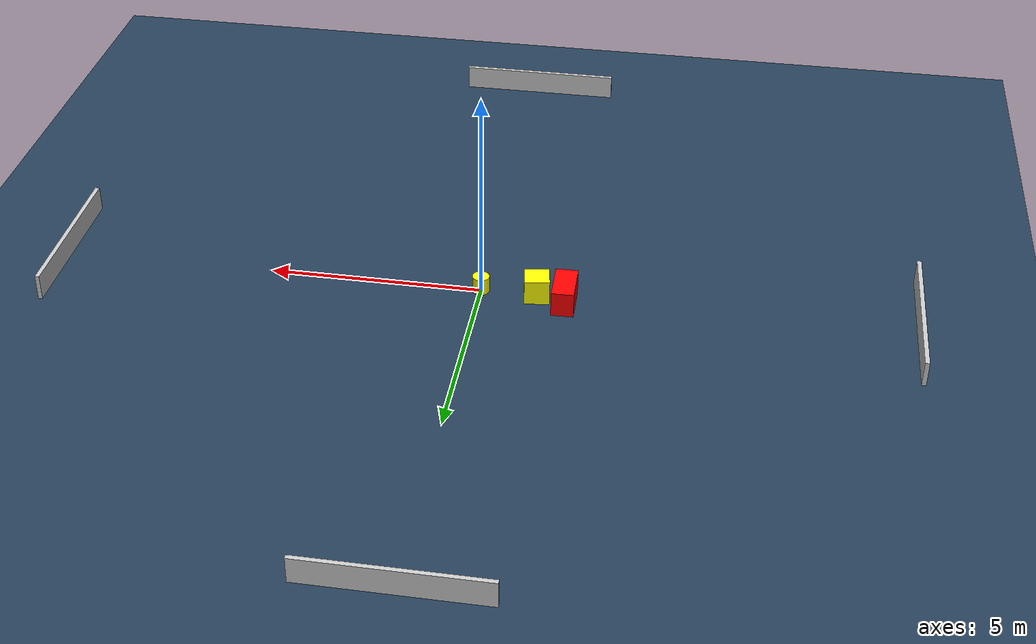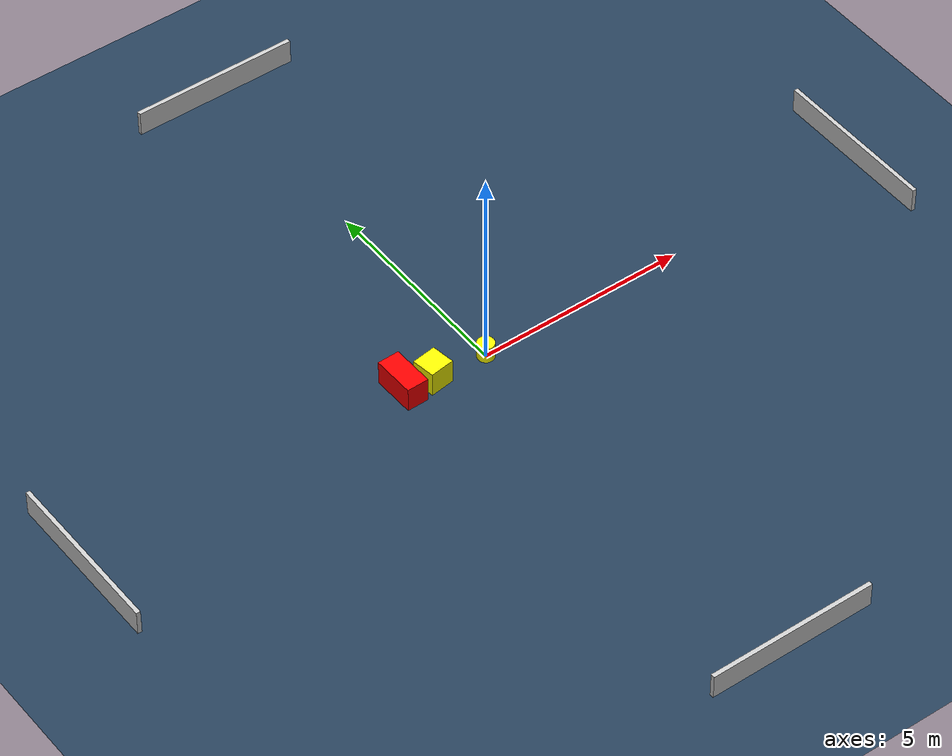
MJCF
<?xml version="1.0" ?>
<mujoco model="generated_environment">
  <option timestep="0.01" integrator="RK4" cone="elliptic"/>
  <default>
    <geom density="1"/>
  </default>
  <asset>
    <texture builtin="gradient" height="3072" name="skybox" rgb1="0.3 0.5 0.7" rgb2="0 0 0" type="skybox" width="512"/>
    <texture builtin="checker" height="300" name="groundplane" rgb1="0.2 0.3 0.4" rgb2="0.1 0.2 0.3" type="2d" width="300"/>
    <material name="groundplane" reflectance="0.2" texrepeat="5 5" texture="groundplane"/>
  </asset>
  <worldbody>
    <light dir="0 0 -1" directional="true" pos="0 0 1.5"/>
    <geom condim="3" friction="0.5 0.005 0.001" material="groundplane" name="floor" pos="0 0 0" size="0 0 0.05" type="plane"/>
    <body name="walls">
      <geom name="wall_1" condim="4" pos="-10.0 0.0 0.3" rgba="0.800000011920929 0.800000011920929 0.800000011920929 1.0" size="0.05 2.0 0.3" type="box"/>
      <geom name="wall_2" condim="4" pos="10.0 0.0 0.3" rgba="0.800000011920929 0.800000011920929 0.800000011920929 1.0" size="0.05 2.0 0.3" type="box"/>
      <geom name="wall_3" condim="4" pos="0.0 -10.0 0.3" rgba="0.800000011920929 0.800000011920929 0.800000011920929 1.0" size="2.0 0.05 0.3" type="box"/>
      <geom name="wall_4" condim="4" pos="0.0 10.0 0.3" rgba="0.800000011920929 0.800000011920929 0.800000011920929 1.0" size="2.0 0.05 0.3" type="box"/>
    </body>
    <body name="robot">
      <joint name="joint_x" type="slide" pos="0 0 0" axis="1 0 0"/>
      <joint name="joint_y" type="slide" pos="0 0 0" axis="0 1 0"/>
      <geom name="robot" type="cylinder" pos="0.0 0.0 0.2" size="0.2 0.2 0.0" mass="5.0" friction="1.0 0.005 0.0001" condim="4" rgba="1.0 1.0 0.0 1.0"/>
    </body>
    <body name="obstacle_1_movable">
      <geom name="obstacle_1_movable" condim="4" pos="-1.3146934802861565 0.06842037817491961 0.3" euler="0 0 98.10273735098535" friction="0.0 0.005 0.001" rgba="1.0 1.0 0.0 1.0" size="0.278577077580963 0.29357048878527975 0.3" type="box" mass="0.1"/>
      <joint type="free"/>
    </body>
    <body name="obstacle_2_static">
      <geom name="obstacle_2_static" condim="4" pos="-1.9759172760682173 0.21203703851395708 0.3" euler="0 0 1.1024025427158257" friction="0.0 0.005 0.001" rgba="1.0 0.0 0.0 1.0" size="0.26129870782476894 0.5097762775457451 0.3" type="box"/>
    </body>
  </worldbody>
  <actuator>
    <motor name="actuator_x" joint="joint_x" gear="1" ctrlrange="-1 1"/>
    <motor name="actuator_y" joint="joint_y" gear="1" ctrlrange="-1 1"/>
  </actuator>
</mujoco>
